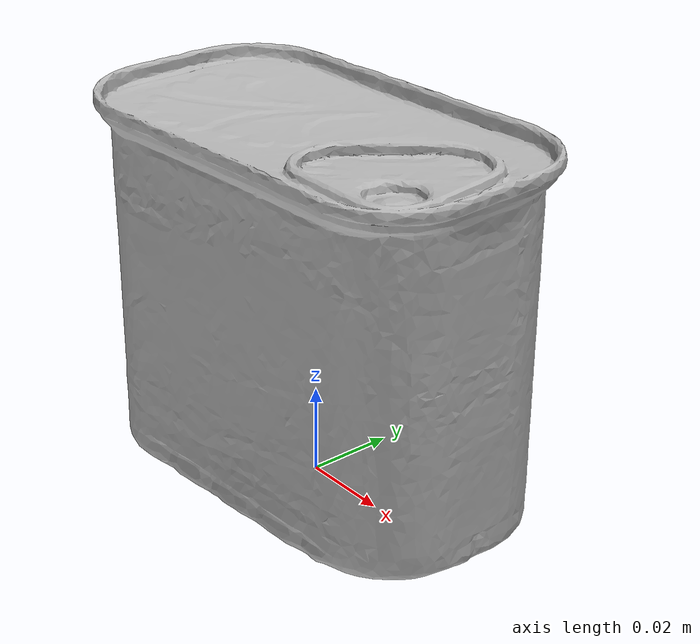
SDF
<?xml version="1.0" ?>
<sdf version="1.8">
  <model name='ycb_005_spam'>
    <link name='body'>
      <inertial>
        <mass>0.478077558604</mass>
        <pose>0.000437647849 0.000362285601 0.04087685 0 0 0</pose>
        <inertia>
          <ixx>0.000337230546992</ixx>
          <ixy>-1.33095263989e-05</ixy>
          <ixz>-7.42393573123e-07</ixz>
          <iyy>0.000578044555121</iyy>
          <iyz>1.50001214311e-06</iyz>
          <izz>0.000435803926086</izz>
        </inertia>
      </inertial>

      <visual name='ycb_005_spam_visual'>
        <pose>0.033278 0.026715 0.003046 0 0 0</pose>
        <geometry>
          <mesh>
            <uri>model://ycb_005_spam/meshes/textured.dae</uri>
          </mesh>
        </geometry>
      </visual>

      <collision name='ycb_005_spam_collision'>
        <pose>0.033278 0.026715 0.003046 0 0 0</pose>
        <geometry>
          <mesh>
            <uri>model://ycb_005_spam/meshes/nontextured.stl</uri>
          </mesh>
        </geometry>
        <max_contacts>10</max_contacts>
      </collision>
    </link>
  </model>
</sdf>
